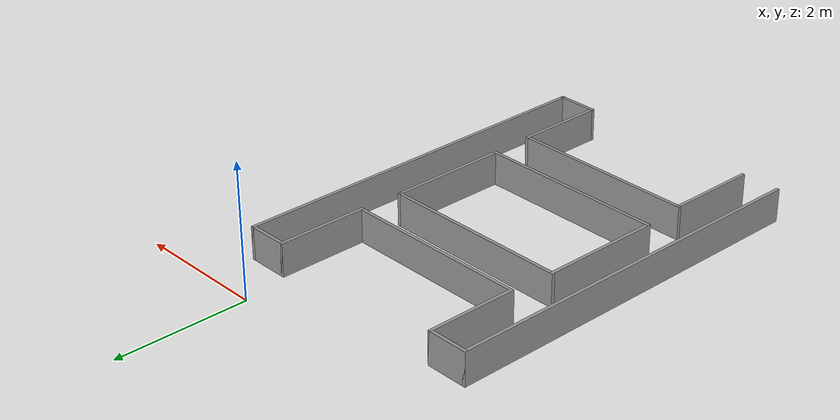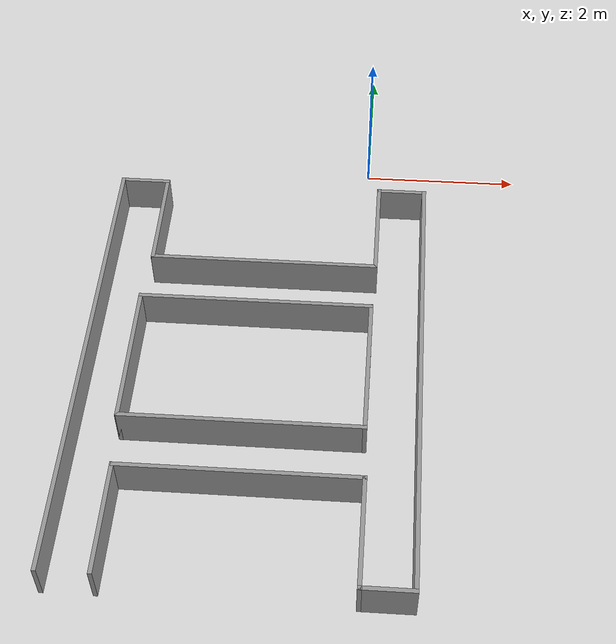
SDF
<?xml version='1.0'?>
<sdf version='1.7'>
  <model name='H'>
    <pose>-1.27 -3.304 0 0 -0 0</pose>
    <link name='Wall_10'>
      <collision name='Wall_10_Collision'>
        <geometry>
          <box>
            <size>2.9 0.05 0.5</size>
          </box>
        </geometry>
        <pose>0 0 0.25 0 -0 0</pose>
      </collision>
      <visual name='Wall_10_Visual'>
        <pose>0 0 0.25 0 -0 0</pose>
        <geometry>
          <box>
            <size>2.9 0.05 0.5</size>
          </box>
        </geometry>
        <material>
          <script>
            <uri>file://media/materials/scripts/gazebo.material</uri>
            <name>Gazebo/Grey</name>
          </script>
          <ambient>1 1 1 1</ambient>
        </material>
        <meta>
          <layer>0</layer>
        </meta>
      </visual>
      <pose>0 1.221 0 0 -0 0</pose>
    </link>
    <link name='Wall_11'>
      <collision name='Wall_11_Collision'>
        <geometry>
          <box>
            <size>1.4 0.05 0.5</size>
          </box>
        </geometry>
        <pose>0 0 0.25 0 -0 0</pose>
      </collision>
      <visual name='Wall_11_Visual'>
        <pose>0 0 0.25 0 -0 0</pose>
        <geometry>
          <box>
            <size>1.4 0.05 0.5</size>
          </box>
        </geometry>
        <material>
          <script>
            <uri>file://media/materials/scripts/gazebo.material</uri>
            <name>Gazebo/Grey</name>
          </script>
          <ambient>1 1 1 1</ambient>
        </material>
        <meta>
          <layer>0</layer>
        </meta>
      </visual>
      <pose>1.425 1.896 0 0 -0 1.5708</pose>
    </link>
    <link name='Wall_12'>
      <collision name='Wall_12_Collision'>
        <geometry>
          <box>
            <size>0.65 0.05 0.5</size>
          </box>
        </geometry>
        <pose>0 0 0.25 0 -0 0</pose>
      </collision>
      <visual name='Wall_12_Visual'>
        <pose>0 0 0.25 0 -0 0</pose>
        <geometry>
          <box>
            <size>0.65 0.05 0.5</size>
          </box>
        </geometry>
        <material>
          <script>
            <uri>file://media/materials/scripts/gazebo.material</uri>
            <name>Gazebo/Grey</name>
          </script>
          <ambient>1 1 1 1</ambient>
        </material>
        <meta>
          <layer>0</layer>
        </meta>
      </visual>
      <pose>1.725 2.571 0 0 -0 0</pose>
    </link>
    <link name='Wall_13'>
      <collision name='Wall_13_Collision'>
        <geometry>
          <box>
            <size>5.9 0.05 0.5</size>
          </box>
        </geometry>
        <pose>0 0 0.25 0 -0 0</pose>
      </collision>
      <visual name='Wall_13_Visual'>
        <pose>0 0 0.25 0 -0 0</pose>
        <geometry>
          <box>
            <size>5.9 0.05 0.5</size>
          </box>
        </geometry>
        <material>
          <script>
            <uri>file://media/materials/scripts/gazebo.material</uri>
            <name>Gazebo/Grey</name>
          </script>
          <ambient>1 1 1 1</ambient>
        </material>
        <meta>
          <layer>0</layer>
        </meta>
      </visual>
      <pose>2.025 -0.354 0 0 -0 -1.5708</pose>
    </link>
    <link name='Wall_14'>
      <collision name='Wall_14_Collision'>
        <geometry>
          <box>
            <size>0.65 0.05 0.5</size>
          </box>
        </geometry>
        <pose>0 0 0.25 0 -0 0</pose>
      </collision>
      <visual name='Wall_14_Visual'>
        <pose>0 0 0.25 0 -0 0</pose>
        <geometry>
          <box>
            <size>0.65 0.05 0.5</size>
          </box>
        </geometry>
        <material>
          <script>
            <uri>file://media/materials/scripts/gazebo.material</uri>
            <name>Gazebo/Grey</name>
          </script>
          <ambient>1 1 1 1</ambient>
        </material>
        <meta>
          <layer>0</layer>
        </meta>
      </visual>
      <pose>1.725 -3.279 0 0 -0 3.14159</pose>
    </link>
    <link name='Wall_15'>
      <collision name='Wall_15_Collision'>
        <geometry>
          <box>
            <size>1.4 0.05 0.5</size>
          </box>
        </geometry>
        <pose>0 0 0.25 0 -0 0</pose>
      </collision>
      <visual name='Wall_15_Visual'>
        <pose>0 0 0.25 0 -0 0</pose>
        <geometry>
          <box>
            <size>1.4 0.05 0.5</size>
          </box>
        </geometry>
        <material>
          <script>
            <uri>file://media/materials/scripts/gazebo.material</uri>
            <name>Gazebo/Grey</name>
          </script>
          <ambient>1 1 1 1</ambient>
        </material>
        <meta>
          <layer>0</layer>
        </meta>
      </visual>
      <pose>1.425 -2.604 0 0 -0 1.5708</pose>
    </link>
    <link name='Wall_16'>
      <collision name='Wall_16_Collision'>
        <geometry>
          <box>
            <size>2.9 0.05 0.5</size>
          </box>
        </geometry>
        <pose>0 0 0.25 0 -0 0</pose>
      </collision>
      <visual name='Wall_16_Visual'>
        <pose>0 0 0.25 0 -0 0</pose>
        <geometry>
          <box>
            <size>2.9 0.05 0.5</size>
          </box>
        </geometry>
        <material>
          <script>
            <uri>file://media/materials/scripts/gazebo.material</uri>
            <name>Gazebo/Grey</name>
          </script>
          <ambient>1 1 1 1</ambient>
        </material>
        <meta>
          <layer>0</layer>
        </meta>
      </visual>
      <pose>0 -1.929 0 0 -0 3.14159</pose>
    </link>
    <link name='Wall_17'>
      <collision name='Wall_17_Collision'>
        <geometry>
          <box>
            <size>1.39979 0.05 0.5</size>
          </box>
        </geometry>
        <pose>0 0 0.25 0 -0 0</pose>
      </collision>
      <visual name='Wall_17_Visual'>
        <pose>0 0 0.25 0 -0 0</pose>
        <geometry>
          <box>
            <size>1.39979 0.05 0.5</size>
          </box>
        </geometry>
        <material>
          <script>
            <uri>file://media/materials/scripts/gazebo.material</uri>
            <name>Gazebo/Grey</name>
          </script>
          <ambient>1 1 1 1</ambient>
        </material>
        <meta>
          <layer>0</layer>
        </meta>
      </visual>
      <pose>-1.425 -2.604 0 0 -0 -1.5708</pose>
    </link>
    <link name='Wall_19'>
      <collision name='Wall_19_Collision'>
        <geometry>
          <box>
            <size>1.859 0.05 0.5</size>
          </box>
        </geometry>
        <pose>0 0 0.25 0 -0 0</pose>
      </collision>
      <visual name='Wall_19_Visual'>
        <pose>0 0 0.25 0 -0 0</pose>
        <geometry>
          <box>
            <size>1.859 0.05 0.5</size>
          </box>
        </geometry>
        <material>
          <script>
            <uri>file://media/materials/scripts/gazebo.material</uri>
            <name>Gazebo/Grey</name>
          </script>
          <ambient>1 1 1 1</ambient>
        </material>
        <meta>
          <layer>0</layer>
        </meta>
      </visual>
      <pose>-1.48 -0.3465 0 0 -0 -1.5708</pose>
    </link>
    <link name='Wall_20'>
      <collision name='Wall_20_Collision'>
        <geometry>
          <box>
            <size>2.927 0.05 0.5</size>
          </box>
        </geometry>
        <pose>0 0 0.25 0 -0 0</pose>
      </collision>
      <visual name='Wall_20_Visual'>
        <pose>0 0 0.25 0 -0 0</pose>
        <geometry>
          <box>
            <size>2.927 0.05 0.5</size>
          </box>
        </geometry>
        <material>
          <script>
            <uri>file://media/materials/scripts/gazebo.material</uri>
            <name>Gazebo/Grey</name>
          </script>
          <ambient>1 1 1 1</ambient>
        </material>
        <meta>
          <layer>0</layer>
        </meta>
      </visual>
      <pose>-0.0415 -1.251 0 0 -0 0</pose>
    </link>
    <link name='Wall_21'>
      <collision name='Wall_21_Collision'>
        <geometry>
          <box>
            <size>1.85906 0.05 0.5</size>
          </box>
        </geometry>
        <pose>0 0 0.25 0 -0 0</pose>
      </collision>
      <visual name='Wall_21_Visual'>
        <pose>0 0 0.25 0 -0 0</pose>
        <geometry>
          <box>
            <size>1.85906 0.05 0.5</size>
          </box>
        </geometry>
        <material>
          <script>
            <uri>file://media/materials/scripts/gazebo.material</uri>
            <name>Gazebo/Grey</name>
          </script>
          <ambient>1 1 1 1</ambient>
        </material>
        <meta>
          <layer>0</layer>
        </meta>
      </visual>
      <pose>1.397 -0.3465 0 0 -0 1.5708</pose>
    </link>
    <link name='Wall_22'>
      <collision name='Wall_22_Collision'>
        <geometry>
          <box>
            <size>2.927 0.05 0.5</size>
          </box>
        </geometry>
        <pose>0 0 0.25 0 -0 0</pose>
      </collision>
      <visual name='Wall_22_Visual'>
        <pose>0 0 0.25 0 -0 0</pose>
        <geometry>
          <box>
            <size>2.927 0.05 0.5</size>
          </box>
        </geometry>
        <material>
          <script>
            <uri>file://media/materials/scripts/gazebo.material</uri>
            <name>Gazebo/Grey</name>
          </script>
          <ambient>1 1 1 1</ambient>
        </material>
        <meta>
          <layer>0</layer>
        </meta>
      </visual>
      <pose>-0.0415 0.558 0 0 -0 3.14159</pose>
    </link>
    <link name='Wall_7'>
      <collision name='Wall_7_Collision'>
        <geometry>
          <box>
            <size>5.9 0.05 0.5</size>
          </box>
        </geometry>
        <pose>0 0 0.25 0 -0 0</pose>
      </collision>
      <visual name='Wall_7_Visual'>
        <pose>0 0 0.25 0 -0 0</pose>
        <geometry>
          <box>
            <size>5.9 0.05 0.5</size>
          </box>
        </geometry>
        <material>
          <script>
            <uri>file://media/materials/scripts/gazebo.material</uri>
            <name>Gazebo/Grey</name>
          </script>
          <ambient>1 1 1 1</ambient>
        </material>
        <meta>
          <layer>0</layer>
        </meta>
      </visual>
      <pose>-2.025 -0.354 0 0 -0 1.5708</pose>
    </link>
    <link name='Wall_8'>
      <collision name='Wall_8_Collision'>
        <geometry>
          <box>
            <size>0.65 0.05 0.5</size>
          </box>
        </geometry>
        <pose>0 0 0.25 0 -0 0</pose>
      </collision>
      <visual name='Wall_8_Visual'>
        <pose>0 0 0.25 0 -0 0</pose>
        <geometry>
          <box>
            <size>0.65 0.05 0.5</size>
          </box>
        </geometry>
        <material>
          <script>
            <uri>file://media/materials/scripts/gazebo.material</uri>
            <name>Gazebo/Grey</name>
          </script>
          <ambient>1 1 1 1</ambient>
        </material>
        <meta>
          <layer>0</layer>
        </meta>
      </visual>
      <pose>-1.725 2.571 0 0 -0 0</pose>
    </link>
    <link name='Wall_9'>
      <collision name='Wall_9_Collision'>
        <geometry>
          <box>
            <size>1.4 0.05 0.5</size>
          </box>
        </geometry>
        <pose>0 0 0.25 0 -0 0</pose>
      </collision>
      <visual name='Wall_9_Visual'>
        <pose>0 0 0.25 0 -0 0</pose>
        <geometry>
          <box>
            <size>1.4 0.05 0.5</size>
          </box>
        </geometry>
        <material>
          <script>
            <uri>file://media/materials/scripts/gazebo.material</uri>
            <name>Gazebo/Grey</name>
          </script>
          <ambient>1 1 1 1</ambient>
        </material>
        <meta>
          <layer>0</layer>
        </meta>
      </visual>
      <pose>-1.425 1.896 0 0 -0 -1.5708</pose>
    </link>
    <static>1</static>
  </model>
</sdf>
